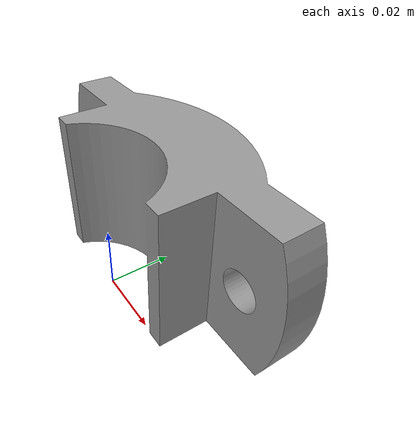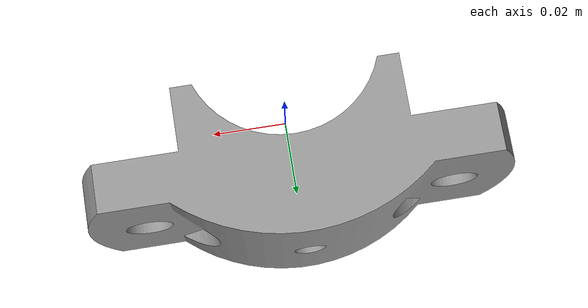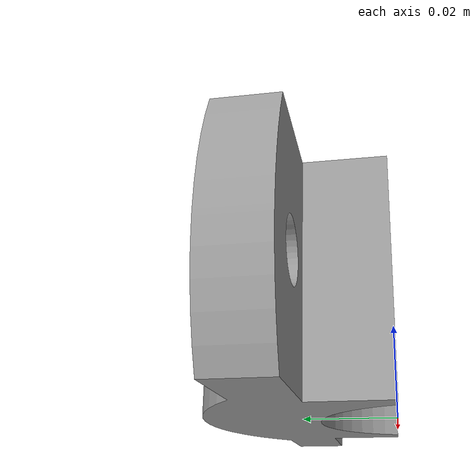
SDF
<?xml version='1.0'?>
<sdf version='1.6'>
  <model name="cap">
<static>false</static>
<link name= "top">
<pose> 0.0 0.0 0.022  0 0 0 </pose>
    <inertial>
     <pose>-0.0 0.0 0.0 0 0 0</pose>
        <mass>0.6847</mass>
          <inertia>
           <ixx>5.2326e-04</ixx>
           <ixy>-3e-10</ixy>
           <ixz>8.27e-10</ixz>
           <iyy>1.7126037e-04</iyy>
           <iyz>-2.5e-7</iyz>
           <izz>6.08125629e-04</izz>
          </inertia>
     </inertial>
<collision name= "top collision">
<pose> 0.0 0.0 0.0  0 0 0 </pose>
 <geometry>

            <box>
              <size>0.048 0.11 0.03</size>
            </box>

 </geometry>
 <surface>
    <contact>
           <poissons_ratio>0.211</poissons_ratio>
            <elastic_modulus>100e+09</elastic_modulus>
            <ode>
              <kp>1e15</kp>
              <kd>1e13</kd>
              <max_vel>1.0</max_vel>
              <min_depth>0.001</min_depth>
            </ode>
      </contact>
          <friction>
            <ode>
              <mu>1.0</mu>
              <mu2>1.0</mu2>
            </ode>
          </friction>
  </surface>
</collision>

<visual name = "visual top">
<pose> 0.0 0.0 0.0  0 0 0 </pose>
  <geometry>
   <mesh>
     <uri>model://cap/meshes/plummer_block_cap.obj</uri>
      <scale> 1 1 1 </scale>
   </mesh>
</geometry>
<material>
          <script>
            <uri>file://media/materials/scripts/gazebo.material</uri>
            <name>Gazebo/Grey</name>
          </script>
        </material>
</visual>
</link>

  </model>
</sdf>
